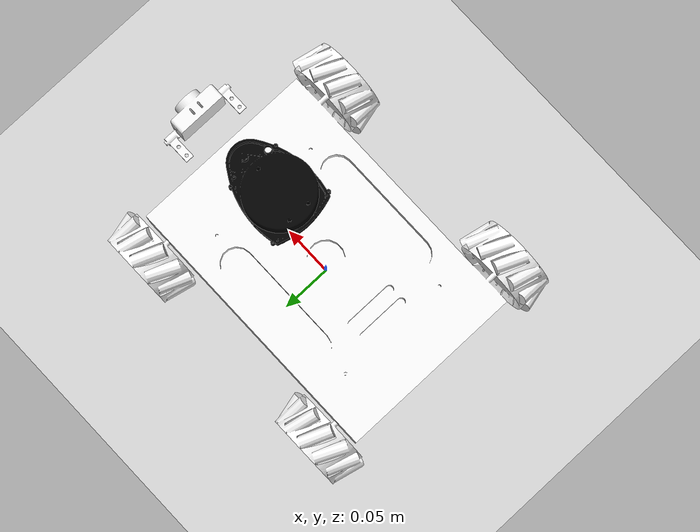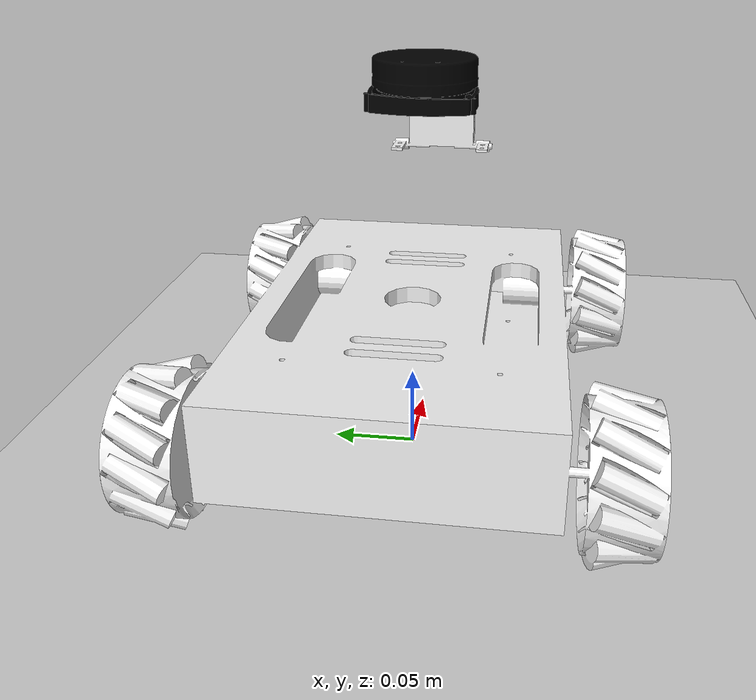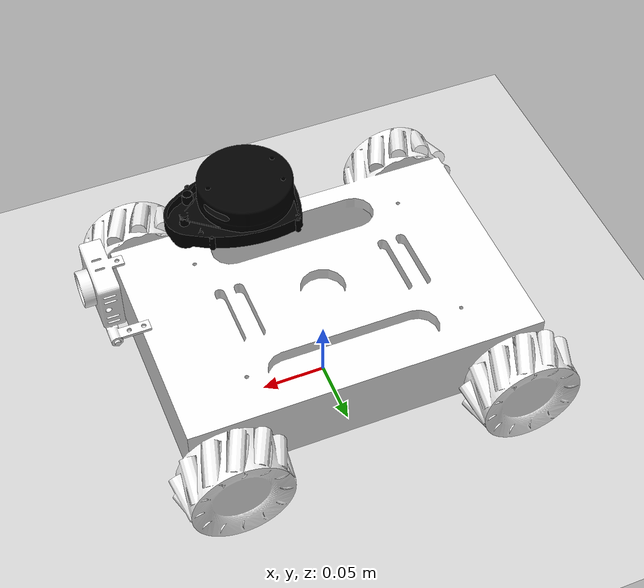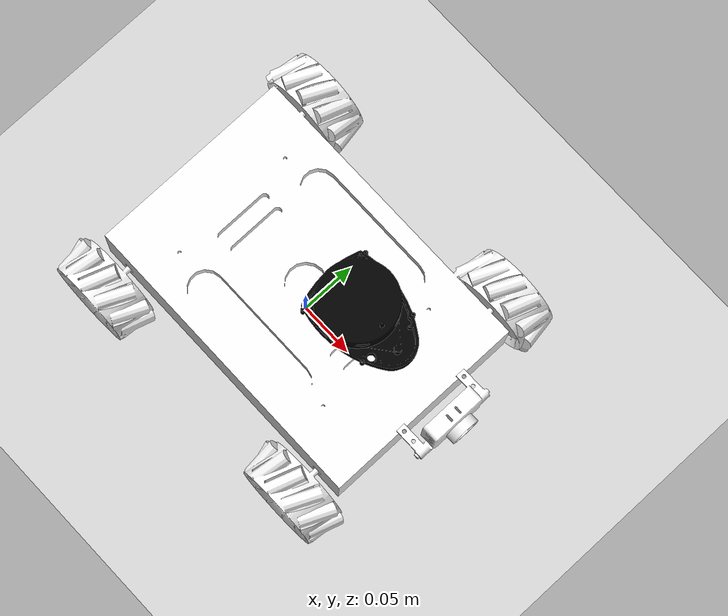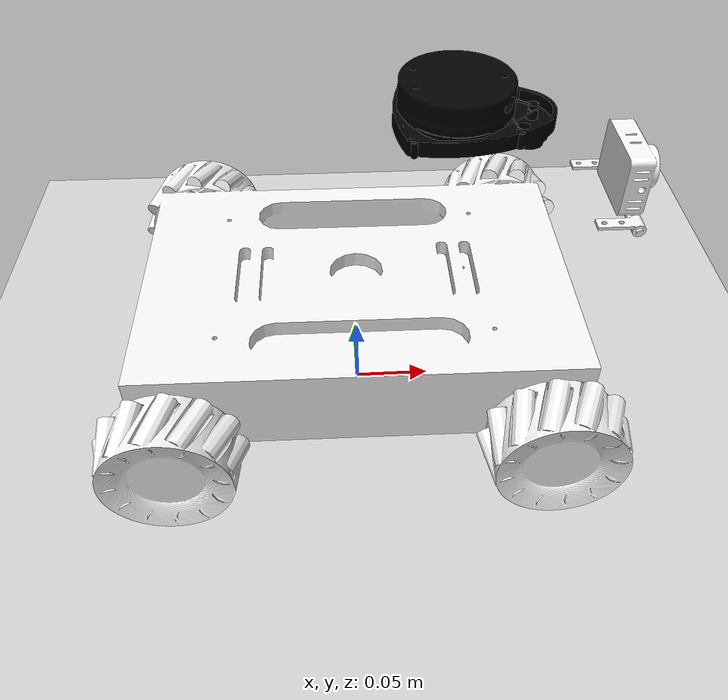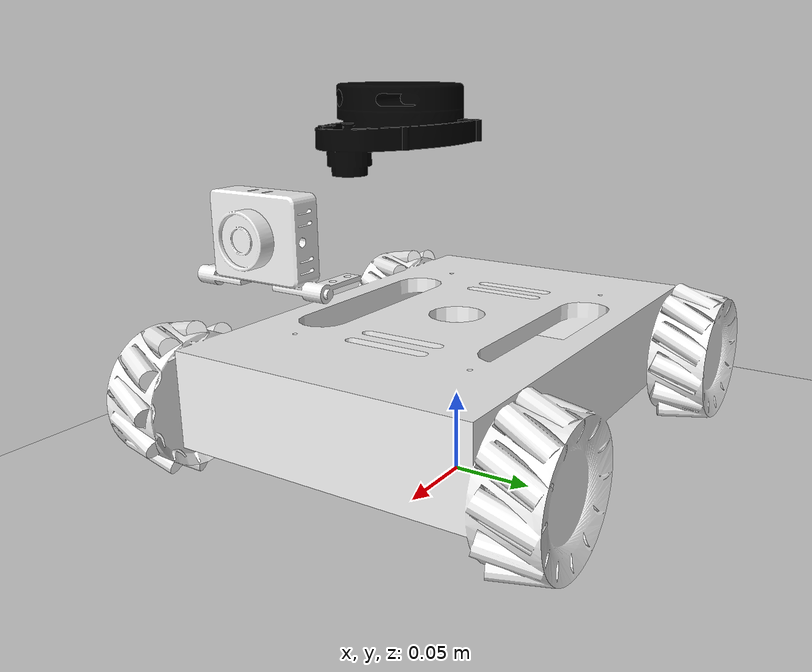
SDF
<sdf version='1.9'>
  <world name='empty'>
    <physics name='1ms' type='ignored'>
      <max_step_size>0.001</max_step_size>
      <real_time_factor>1</real_time_factor>
      <real_time_update_rate>1000</real_time_update_rate>
    </physics>
    <plugin name='gz::sim::systems::Physics' filename='ignition-gazebo-physics-system'/>
    <plugin name='gz::sim::systems::UserCommands' filename='ignition-gazebo-user-commands-system'/>
    <plugin name='gz::sim::systems::SceneBroadcaster' filename='ignition-gazebo-scene-broadcaster-system'/>
    <plugin name='gz::sim::systems::Contact' filename='ignition-gazebo-contact-system'/>
    <gravity>0 0 -9.8</gravity>
    <magnetic_field>6e-06 2.3e-05 -4.2e-05</magnetic_field>
    <atmosphere type='adiabatic'/>
    <scene>
      <ambient>0.4 0.4 0.4 1</ambient>
      <background>0.7 0.7 0.7 1</background>
      <shadows>true</shadows>
    </scene>
    <model name='ground_plane'>
      <static>true</static>
      <link name='link'>
        <collision name='collision'>
          <geometry>
            <plane>
              <normal>0 0 1</normal>
              <size>100 100</size>
            </plane>
          </geometry>
          <surface>
            <friction>
              <ode/>
            </friction>
            <bounce/>
            <contact/>
          </surface>
        </collision>
        <visual name='visual'>
          <geometry>
            <plane>
              <normal>0 0 1</normal>
              <size>100 100</size>
            </plane>
          </geometry>
          <material>
            <ambient>0.8 0.8 0.8 1</ambient>
            <diffuse>0.8 0.8 0.8 1</diffuse>
            <specular>0.8 0.8 0.8 1</specular>
          </material>
        </visual>
        <pose>0 0 0 0 -0 0</pose>
        <inertial>
          <pose>0 0 0 0 -0 0</pose>
          <mass>1</mass>
          <inertia>
            <ixx>1</ixx>
            <ixy>0</ixy>
            <ixz>0</ixz>
            <iyy>1</iyy>
            <iyz>0</iyz>
            <izz>1</izz>
          </inertia>
        </inertial>
        <enable_wind>false</enable_wind>
      </link>
      <pose>0 0 0 0 -0 0</pose>
      <self_collide>false</self_collide>
    </model>
    <model name='zhongxi_robot'>
      <link name='base_link'>
        <inertial>
          <pose>0.004367 -0.001403 -0.026931 0 -0 0</pose>
          <mass>2.3170299999999999</mass>
          <inertia>
            <ixx>0.0060854799999999999</ixx>
            <ixy>-1.4205100000000001e-05</ixy>
            <ixz>-0.0012498699999999999</ixz>
            <iyy>0.0098524800000000003</iyy>
            <iyz>-2.4864200000000002e-05</iyz>
            <izz>0.0094613700000000002</izz>
          </inertia>
        </inertial>
        <collision name='base_link_collision'>
          <pose>0 0 0 0 0 0</pose>
          <geometry>
            <mesh>
              <scale>1 1 1</scale>
              <uri>file:///home/chuil/Desktop/zhongxi/src/zhongxi_description/urdf/model://zhongxi_description/meshes/base_link.STL</uri>
            </mesh>
          </geometry>
        </collision>
        <collision name='base_link_fixed_joint_lump__camera_link_collision_1'>
          <pose>0.1655 0 0.074 0 0 0</pose>
          <geometry>
            <mesh>
              <scale>1 1 1</scale>
              <uri>file:///home/chuil/Desktop/zhongxi/src/zhongxi_description/urdf/model://zhongxi_description/meshes/camera_link.STL</uri>
            </mesh>
          </geometry>
        </collision>
        <collision name='base_link_fixed_joint_lump__laser_link_collision_2'>
          <pose>0.0549999999999995 0 0.117 0 0 0</pose>
          <geometry>
            <mesh>
              <scale>1 1 1</scale>
              <uri>file:///home/chuil/Desktop/zhongxi/src/zhongxi_description/urdf/model://zhongxi_description/meshes/laser_link.STL</uri>
            </mesh>
          </geometry>
        </collision>
        <visual name='base_link_visual'>
          <pose>0 0 0 0 0 0</pose>
          <geometry>
            <mesh>
              <scale>1 1 1</scale>
              <uri>file:///home/chuil/Desktop/zhongxi/src/zhongxi_description/urdf/model://zhongxi_description/meshes/base_link.STL</uri>
            </mesh>
          </geometry>
          <material>
            <diffuse>0.941175 0.941175 0.941175 1</diffuse>
            <ambient>0.941175 0.941175 0.941175 1</ambient>
          </material>
        </visual>
        <visual name='base_link_fixed_joint_lump__camera_link_visual_1'>
          <pose>0.1655 0 0.074 0 0 0</pose>
          <geometry>
            <mesh>
              <scale>1 1 1</scale>
              <uri>file:///home/chuil/Desktop/zhongxi/src/zhongxi_description/urdf/model://zhongxi_description/meshes/camera_link.STL</uri>
            </mesh>
          </geometry>
          <material>
            <diffuse>0.941175 0.941175 0.941175 1</diffuse>
            <ambient>0.941175 0.941175 0.941175 1</ambient>
          </material>
        </visual>
        <visual name='base_link_fixed_joint_lump__laser_link_visual_2'>
          <pose>0.0549999999999995 0 0.117 0 0 0</pose>
          <geometry>
            <mesh>
              <scale>1 1 1</scale>
              <uri>file:///home/chuil/Desktop/zhongxi/src/zhongxi_description/urdf/model://zhongxi_description/meshes/laser_link.STL</uri>
            </mesh>
          </geometry>
          <material>
            <diffuse>0 0 0 1</diffuse>
            <ambient>0 0 0 1</ambient>
          </material>
        </visual>
        <pose>0 0 0 0 -0 0</pose>
        <enable_wind>false</enable_wind>
      </link>
      <frame name='camera_joint' attached_to='base_link'>
        <pose>0.1655 0 0.074 0 -0 0</pose>
      </frame>
      <frame name='camera_link' attached_to='camera_joint'/>
      <frame name='laser_joint' attached_to='base_link'>
        <pose>0.055 0 0.117 0 -0 0</pose>
      </frame>
      <frame name='laser_link' attached_to='laser_joint'/>
      <pose>0 0 0.1 0 -0 0</pose>
      <static>false</static>
      <self_collide>false</self_collide>
    </model>
    <light name='sun' type='directional'>
      <pose>0 0 10 0 -0 0</pose>
      <cast_shadows>true</cast_shadows>
      <intensity>1</intensity>
      <direction>-0.5 0.1 -0.9</direction>
      <diffuse>0.8 0.8 0.8 1</diffuse>
      <specular>0.2 0.2 0.2 1</specular>
      <attenuation>
        <range>1000</range>
        <linear>0.01</linear>
        <constant>0.90000000000000002</constant>
        <quadratic>0.001</quadratic>
      </attenuation>
      <spot>
        <inner_angle>0</inner_angle>
        <outer_angle>0</outer_angle>
        <falloff>0</falloff>
      </spot>
    </light>
    <light name='directionallight' type='directional'>
      <pose>-0.041714 -9.7425 2 0 -0 0</pose>
      <cast_shadows>true</cast_shadows>
      <intensity>1</intensity>
      <direction>0 0 -1</direction>
      <diffuse>0.8 0.8 0.8 1</diffuse>
      <specular>0.2 0.2 0.2 1</specular>
      <attenuation>
        <range>1000</range>
        <linear>0.01</linear>
        <constant>0.90000000000000002</constant>
        <quadratic>0.001</quadratic>
      </attenuation>
      <spot>
        <inner_angle>0</inner_angle>
        <outer_angle>0</outer_angle>
        <falloff>0</falloff>
      </spot>
    </light>
  </world>
</sdf>
